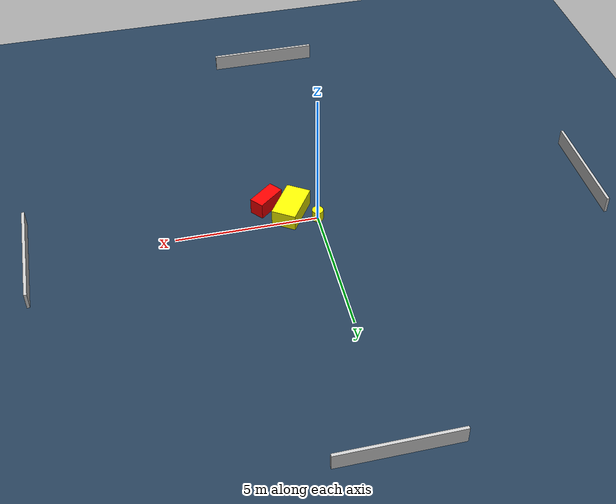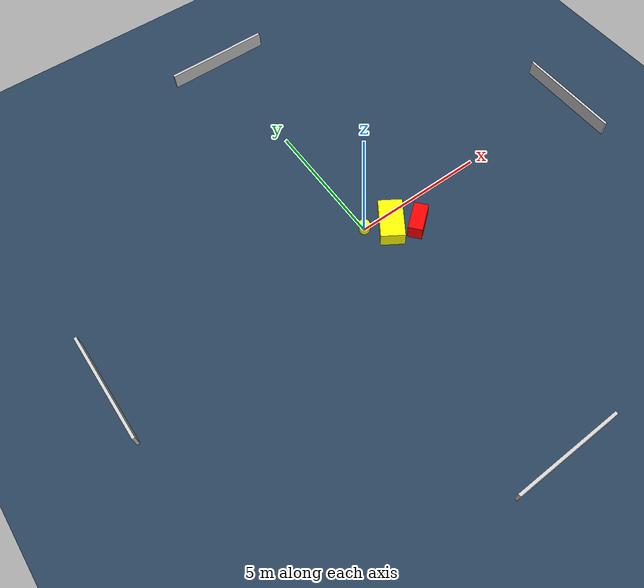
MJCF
<?xml version="1.0" ?>
<mujoco model="generated_environment">
  <option timestep="0.01" integrator="RK4" cone="elliptic"/>
  <default>
    <geom density="1"/>
  </default>
  <asset>
    <texture builtin="gradient" height="3072" name="skybox" rgb1="0.3 0.5 0.7" rgb2="0 0 0" type="skybox" width="512"/>
    <texture builtin="checker" height="300" name="groundplane" rgb1="0.2 0.3 0.4" rgb2="0.1 0.2 0.3" type="2d" width="300"/>
    <material name="groundplane" reflectance="0.2" texrepeat="5 5" texture="groundplane"/>
  </asset>
  <worldbody>
    <light dir="0 0 -1" directional="true" pos="0 0 1.5"/>
    <geom condim="3" friction="0.5 0.005 0.001" material="groundplane" name="floor" pos="0 0 0" size="0 0 0.05" type="plane"/>
    <body name="walls">
      <geom name="wall_1" condim="4" pos="-10.0 0.0 0.3" rgba="0.800000011920929 0.800000011920929 0.800000011920929 1.0" size="0.05 2.0 0.3" type="box"/>
      <geom name="wall_2" condim="4" pos="10.0 0.0 0.3" rgba="0.800000011920929 0.800000011920929 0.800000011920929 1.0" size="0.05 2.0 0.3" type="box"/>
      <geom name="wall_3" condim="4" pos="0.0 -10.0 0.3" rgba="0.800000011920929 0.800000011920929 0.800000011920929 1.0" size="2.0 0.05 0.3" type="box"/>
      <geom name="wall_4" condim="4" pos="0.0 10.0 0.3" rgba="0.800000011920929 0.800000011920929 0.800000011920929 1.0" size="2.0 0.05 0.3" type="box"/>
    </body>
    <body name="robot">
      <joint name="joint_x" type="slide" pos="0 0 0" axis="1 0 0"/>
      <joint name="joint_y" type="slide" pos="0 0 0" axis="0 1 0"/>
      <geom name="robot" type="cylinder" pos="0.0 0.0 0.2" size="0.2 0.2 0.0" mass="5.0" friction="1.0 0.005 0.0001" condim="4" rgba="1.0 1.0 0.0 1.0"/>
    </body>
    <body name="obstacle_1_movable">
      <geom name="obstacle_1_movable" condim="4" pos="0.8481005654875974 -0.4573967378190493 0.3" euler="0 0 56.711002016367814" friction="0.0 0.005 0.001" rgba="1.0 1.0 0.0 1.0" size="0.7512689207060446 0.4360943871784334 0.3" type="box" mass="0.1"/>
      <joint type="free"/>
    </body>
    <body name="obstacle_2_static">
      <geom name="obstacle_2_static" condim="4" pos="1.6384080030602262 -0.978879961015891 0.3" euler="0 0 309.29674152591133" friction="0.0 0.005 0.001" rgba="1.0 0.0 0.0 1.0" size="0.2642469725109172 0.5426874566336316 0.3" type="box"/>
    </body>
  </worldbody>
  <actuator>
    <motor name="actuator_x" joint="joint_x" gear="1" ctrlrange="-1 1"/>
    <motor name="actuator_y" joint="joint_y" gear="1" ctrlrange="-1 1"/>
  </actuator>
</mujoco>
